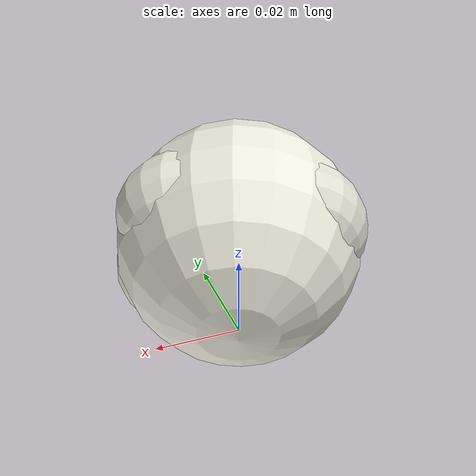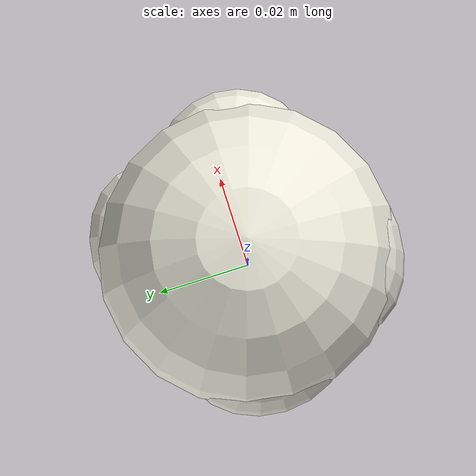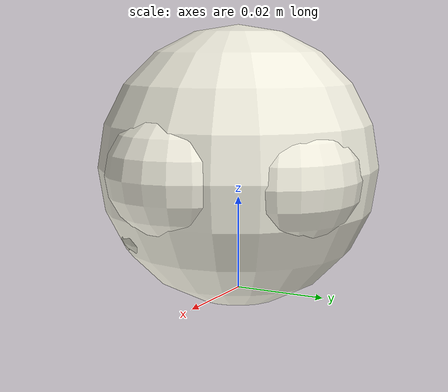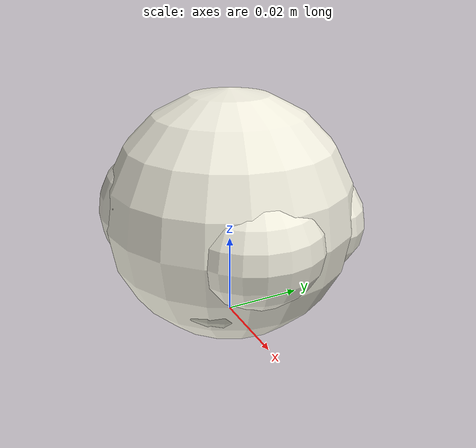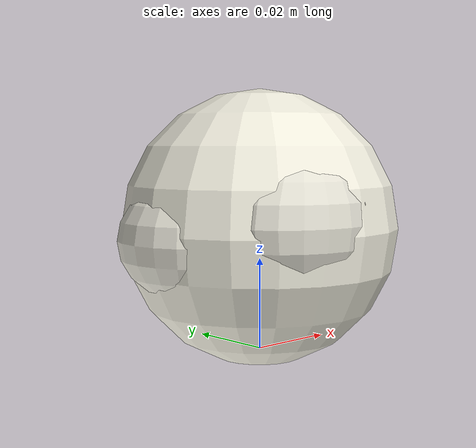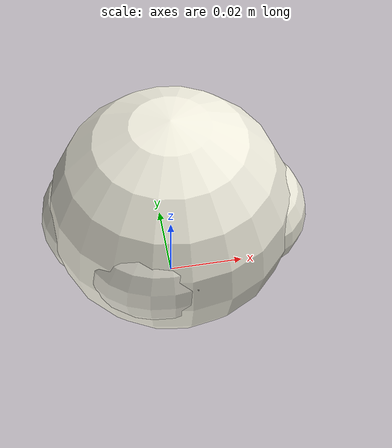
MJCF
<mujoco model="cotton_ball">
  <asset>
    <material name="cotton_soft_white" rgba="0.95 0.94 0.88 1" specular="0.0" shininess="0.0" />
    <material name="cotton_warm_white" rgba="0.90 0.89 0.84 1" specular="0.0" shininess="0.0" />
    <material name="cotton_shadow" rgba="0.78 0.78 0.72 1" specular="0.0" shininess="0.0" />
  </asset>
  <worldbody>
    <body>
      <body name="object">
        <geom name="cotton_core_collision" type="sphere" pos="0 0 0.027" size="0.030" material="cotton_soft_white" group="0" friction="1.5 0.45 0.1" />

        <geom name="cotton_lump_center_visual" type="ellipsoid" pos="0.000 0.000 0.027" size="0.024 0.020 0.018" material="cotton_soft_white" group="1" contype="0" conaffinity="0" />
        <geom name="cotton_lump_front_visual" type="ellipsoid" pos="-0.004 -0.017 0.029" size="0.018 0.013 0.015" material="cotton_warm_white" group="1" contype="0" conaffinity="0" />
        <geom name="cotton_lump_back_visual" type="ellipsoid" pos="0.007 0.016 0.026" size="0.017 0.014 0.014" material="cotton_soft_white" group="1" contype="0" conaffinity="0" />
        <geom name="cotton_lump_left_visual" type="ellipsoid" pos="-0.018 0.002 0.025" size="0.014 0.017 0.013" material="cotton_warm_white" group="1" contype="0" conaffinity="0" />
        <geom name="cotton_lump_right_visual" type="ellipsoid" pos="0.018 -0.003 0.027" size="0.015 0.016 0.014" material="cotton_soft_white" group="1" contype="0" conaffinity="0" />
        <geom name="cotton_lump_top_visual" type="ellipsoid" pos="-0.003 0.004 0.043" size="0.015 0.013 0.010" material="cotton_soft_white" group="1" contype="0" conaffinity="0" />
        <geom name="cotton_lump_low_front_visual" type="ellipsoid" pos="0.010 -0.009 0.015" size="0.014 0.012 0.009" material="cotton_shadow" group="1" contype="0" conaffinity="0" />
        <geom name="cotton_lump_low_back_visual" type="ellipsoid" pos="-0.009 0.010 0.016" size="0.013 0.012 0.009" material="cotton_shadow" group="1" contype="0" conaffinity="0" />
      </body>
      <site rgba="0 0 0 0" size="0.005" pos="0 0 -0.004" name="bottom_site" />
      <site rgba="0 0 0 0" size="0.005" pos="0 0 0.058" name="top_site" />
      <site rgba="0 0 0 0" size="0.032" pos="0.032 0.032 0" name="horizontal_radius_site" />
    </body>
  </worldbody>
</mujoco>
